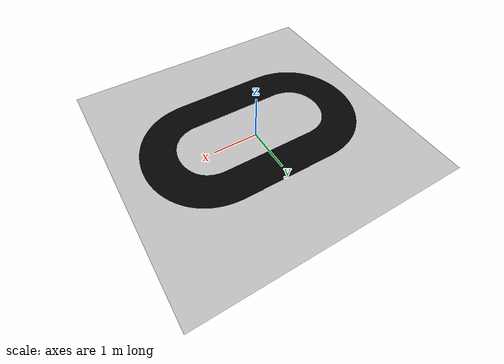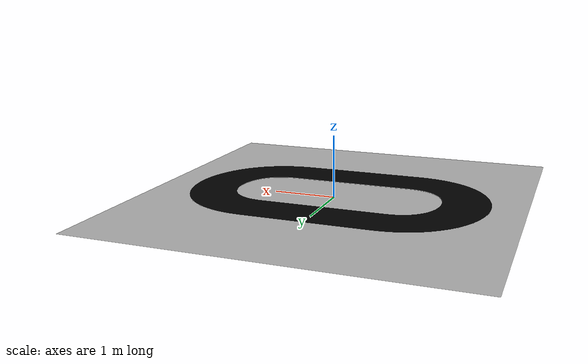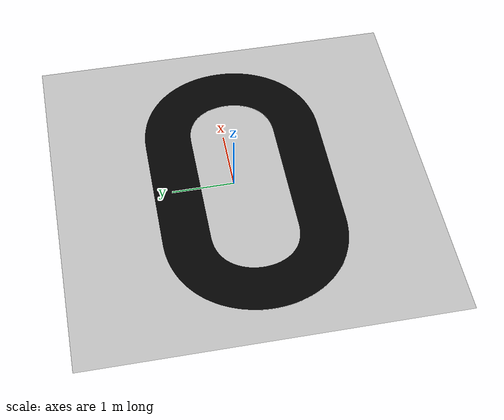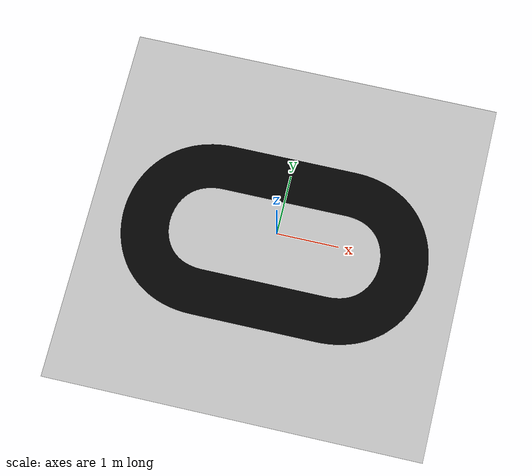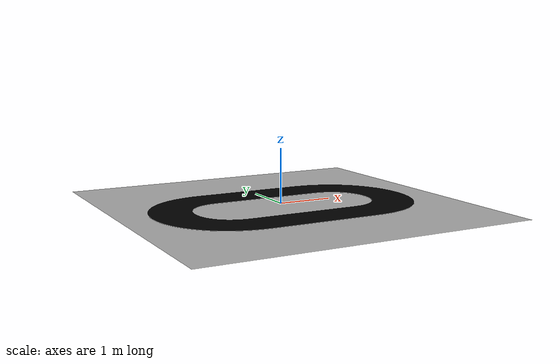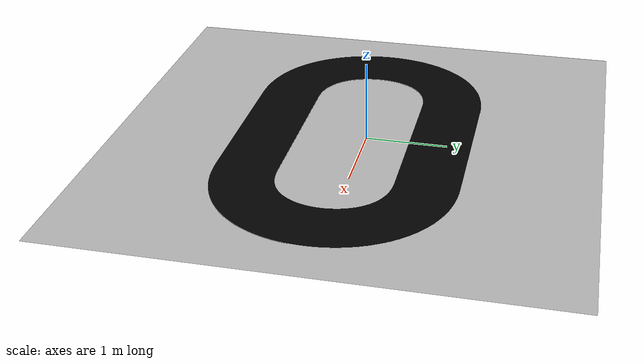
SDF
<?xml version="1.0" ?>
<sdf version="1.6">
  <model name="curved_road">
    <pose>0 0 0 0 0 0</pose>
    <static>true</static>
    <link name="link">
      <collision name="collision1">
        <geometry>
          <mesh>
            <uri>model://curve_path/meshes/lfr2.dae</uri>
          </mesh>
        </geometry>
      </collision>

      <visual name="visual1">
        <cast_shadows>true</cast_shadows>
        <geometry>
          <mesh>
            <uri>model://curve_path/meshes/lfr2.dae</uri>
          </mesh>
        </geometry>
      </visual>

    </link>
  </model>
</sdf>
